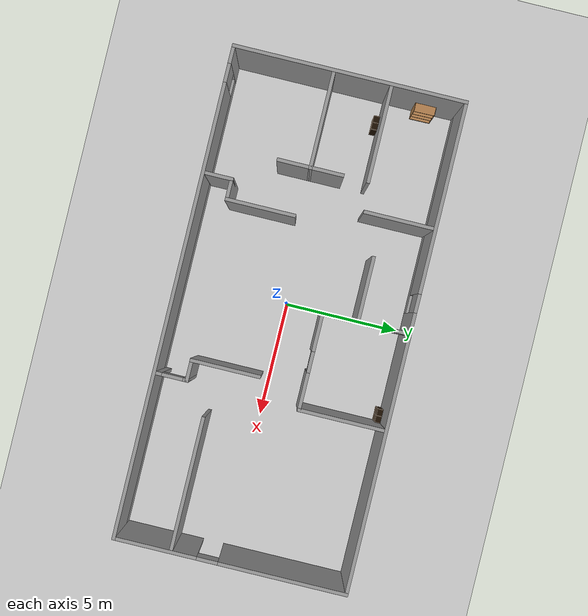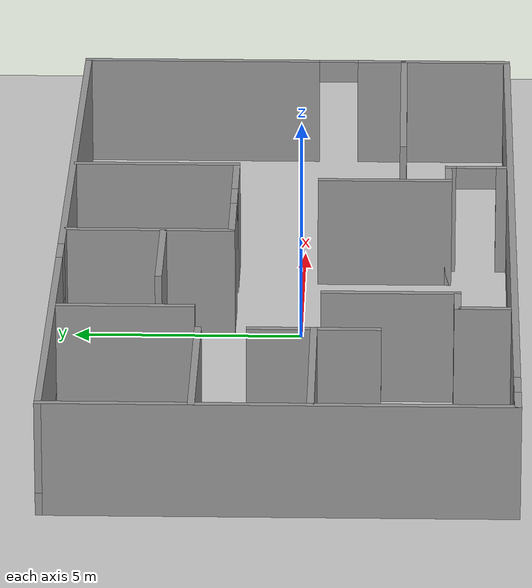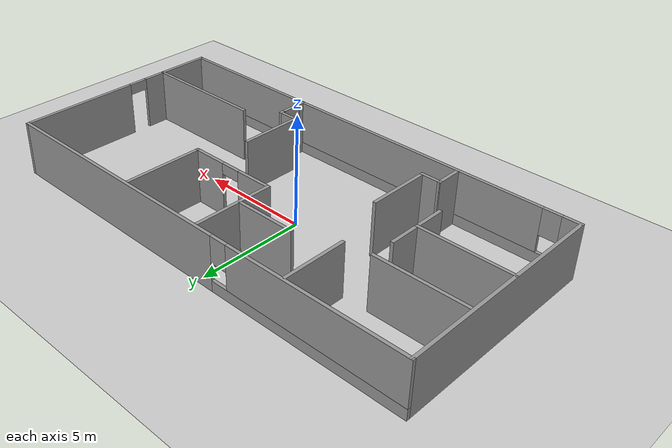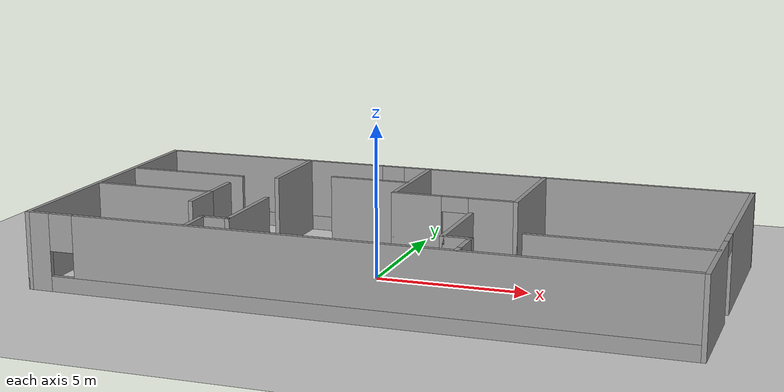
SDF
<sdf version="1.7">
 <world name="default">
  <model name="ground_plane">
   <static>1</static>
   <link name="link">
    <collision name="collision">
     <geometry><plane><normal>0 0 1</normal><size>100 100</size></plane></geometry>
     <surface>
      <contact><collide_bitmask>65535</collide_bitmask></contact>
      <friction><ode><mu>100</mu><mu2>50</mu2></ode></friction>
     </surface>
    </collision>
    <visual name="visual">
     <cast_shadows>0</cast_shadows>
     <geometry><plane><normal>0 0 1</normal><size>100 100</size></plane></geometry>
     <material>
      <script><uri>file://media/materials/scripts/gazebo.material</uri><name>Gazebo/Grey</name></script>
     </material>
    </visual>
   </link>
  </model>
  <model name="Untitled">
   <pose>0.655068 0.309447 0 0 -0 0</pose>
   <link name="Wall_1">
    <collision name="Wall_1_Collision">
     <geometry><box><size>10 0.15 2.5</size></box></geometry>
     <pose>0 0 1.25 0 -0 0</pose>
    </collision>
    <visual name="Wall_1_Visual">
     <pose>0 0 1.25 0 -0 0</pose>
     <geometry><box><size>10 0.15 2.5</size></box></geometry>
     <material>
      <script><uri>file://media/materials/scripts/gazebo.material</uri><name>Gazebo/Grey</name></script>
      <ambient>1 1 1 1</ambient>
     </material>
     <meta><layer>0</layer></meta>
    </visual>
    <pose>-10.425 0 0 0 -0 -1.5708</pose>
   </link>
   <link name="Wall_11">
    <collision name="Wall_11_Collision">
     <geometry><box><size>4.25 0.15 2.5</size></box></geometry>
     <pose>0 0 1.25 0 -0 0</pose>
    </collision>
    <visual name="Wall_11_Visual">
     <pose>0 0 1.25 0 -0 0</pose>
     <geometry><box><size>4.25 0.15 2.5</size></box></geometry>
     <material>
      <script><uri>file://media/materials/scripts/gazebo.material</uri><name>Gazebo/Grey</name></script>
      <ambient>1 1 1 1</ambient>
     </material>
     <meta><layer>0</layer></meta>
    </visual>
    <pose>-8.36177 1.77745 0 0 -0 0</pose>
   </link>
   <link name="Wall_13">
    <collision name="Wall_13_Collision">
     <geometry><box><size>4.25 0.15 2.5</size></box></geometry>
     <pose>0 0 1.25 0 -0 0</pose>
    </collision>
    <visual name="Wall_13_Visual">
     <pose>0 0 1.25 0 -0 0</pose>
     <geometry><box><size>4.25 0.15 2.5</size></box></geometry>
     <material>
      <script><uri>file://media/materials/scripts/gazebo.material</uri><name>Gazebo/Grey</name></script>
      <ambient>1 1 1 1</ambient>
     </material>
     <meta><layer>0</layer></meta>
    </visual>
    <pose>-8.34855 -0.669174 0 0 -0 0</pose>
   </link>
   <link name="Wall_14">
    <collision name="Wall_14_Collision">
     <geometry><box><size>1.5 0.15 2.5</size></box></geometry>
     <pose>0 0 1.25 0 -0 0</pose>
    </collision>
    <visual name="Wall_14_Visual">
     <pose>0 0 1.25 0 -0 0</pose>
     <geometry><box><size>1.5 0.15 2.5</size></box></geometry>
     <material>
      <script><uri>file://media/materials/scripts/gazebo.material</uri><name>Gazebo/Grey</name></script>
      <ambient>1 1 1 1</ambient>
     </material>
     <meta><layer>0</layer></meta>
    </visual>
    <pose>-6.29855 0.005825 0 0 -0 1.5708</pose>
   </link>
   <link name="Wall_16">
    <collision name="Wall_16_Collision">
     <geometry><box><size>1.5 0.15 2.5</size></box></geometry>
     <pose>0 0 1.25 0 -0 0</pose>
    </collision>
    <visual name="Wall_16_Visual">
     <pose>0 0 1.25 0 -0 0</pose>
     <geometry><box><size>1.5 0.15 2.5</size></box></geometry>
     <material>
      <script><uri>file://media/materials/scripts/gazebo.material</uri><name>Gazebo/Grey</name></script>
      <ambient>1 1 1 1</ambient>
     </material>
     <meta><layer>0</layer></meta>
    </visual>
    <pose>-6.29855 -1.34417 0 0 -0 -1.5708</pose>
   </link>
   <link name="Wall_18">
    <collision name="Wall_18_Collision">
     <geometry><box><size>1.25 0.15 2.5</size></box></geometry>
     <pose>0 0 1.25 0 -0 0</pose>
    </collision>
    <visual name="Wall_18_Visual">
     <pose>0 0 1.25 0 -0 0</pose>
     <geometry><box><size>1.25 0.15 2.5</size></box></geometry>
     <material>
      <script><uri>file://media/materials/scripts/gazebo.material</uri><name>Gazebo/Grey</name></script>
      <ambient>1 1 1 1</ambient>
     </material>
     <meta><layer>0</layer></meta>
    </visual>
    <pose>-5.06888 -4.2586 0 0 -0 1.5708</pose>
   </link>
   <link name="Wall_19">
    <collision name="Wall_19_Collision">
     <geometry><box><size>1 0.15 2.5</size></box></geometry>
     <pose>0 0 1.25 0 -0 0</pose>
    </collision>
    <visual name="Wall_19_Visual">
     <pose>0 0 1.25 0 -0 0</pose>
     <geometry><box><size>1 0.15 2.5</size></box></geometry>
     <material>
      <script><uri>file://media/materials/scripts/gazebo.material</uri><name>Gazebo/Grey</name></script>
      <ambient>1 1 1 1</ambient>
     </material>
     <meta><layer>0</layer></meta>
    </visual>
    <pose>-4.64388 -3.7086 0 0 -0 0</pose>
   </link>
   <link name="Wall_2">
    <pose>0 -4.925 0 0 -0 0</pose>
    <visual name="Wall_2_Visual_0">
     <pose>-10.0872 0 1.25 0 -0 0</pose>
     <geometry><box><size>0.825575 0.15 2.5</size></box></geometry>
     <material>
      <script><uri>file://media/materials/scripts/gazebo.material</uri><name>Gazebo/Grey</name></script>
      <ambient>1 1 1 1</ambient>
     </material>
     <meta><layer>0</layer></meta>
    </visual>
    <collision name="Wall_2_Collision_0">
     <geometry><box><size>0.825575 0.15 2.5</size></box></geometry>
     <pose>-10.0872 0 1.25 0 -0 0</pose>
    </collision>
    <visual name="Wall_2_Visual_1">
     <pose>0.412787 0 0.25 0 -0 0</pose>
     <geometry><box><size>20.1744 0.15 0.5</size></box></geometry>
     <material>
      <script><uri>file://media/materials/scripts/gazebo.material</uri><name>Gazebo/Grey</name></script>
      <ambient>1 1 1 1</ambient>
     </material>
     <meta><layer>0</layer></meta>
    </visual>
    <collision name="Wall_2_Collision_1">
     <geometry><box><size>20.1744 0.15 0.5</size></box></geometry>
     <pose>0.412787 0 0.25 0 -0 0</pose>
    </collision>
    <visual name="Wall_2_Visual_2">
     <pose>0.812787 0 1.5 0 -0 0</pose>
     <geometry><box><size>19.3744 0.15 2</size></box></geometry>
     <material>
      <script><uri>file://media/materials/scripts/gazebo.material</uri><name>Gazebo/Grey</name></script>
      <ambient>1 1 1 1</ambient>
     </material>
     <meta><layer>0</layer></meta>
    </visual>
    <collision name="Wall_2_Collision_2">
     <geometry><box><size>19.3744 0.15 2</size></box></geometry>
     <pose>0.812787 0 1.5 0 -0 0</pose>
    </collision>
    <visual name="Wall_2_Visual_3">
     <pose>-9.27443 0 1.9 0 -0 0</pose>
     <geometry><box><size>0.8 0.15 1.2</size></box></geometry>
     <material>
      <script><uri>file://media/materials/scripts/gazebo.material</uri><name>Gazebo/Grey</name></script>
      <ambient>1 1 1 1</ambient>
     </material>
     <meta><layer>0</layer></meta>
    </visual>
    <collision name="Wall_2_Collision_3">
     <geometry><box><size>0.8 0.15 1.2</size></box></geometry>
     <pose>-9.27443 0 1.9 0 -0 0</pose>
    </collision>
   </link>
   <link name="Wall_20">
    <collision name="Wall_20_Collision">
     <geometry><box><size>3 0.15 2.5</size></box></geometry>
     <pose>0 0 1.25 0 -0 0</pose>
    </collision>
    <visual name="Wall_20_Visual">
     <pose>0 0 1.25 0 -0 0</pose>
     <geometry><box><size>3 0.15 2.5</size></box></geometry>
     <material>
      <script><uri>file://media/materials/scripts/gazebo.material</uri><name>Gazebo/Grey</name></script>
      <ambient>1 1 1 1</ambient>
     </material>
     <meta><layer>0</layer></meta>
    </visual>
    <pose>-4.21887 -2.2836 0 0 -0 1.5708</pose>
   </link>
   <link name="Wall_25">
    <collision name="Wall_25_Collision">
     <geometry><box><size>2.75 0.15 2.5</size></box></geometry>
     <pose>0 0 1.25 0 -0 0</pose>
    </collision>
    <visual name="Wall_25_Visual">
     <pose>0 0 1.25 0 -0 0</pose>
     <geometry><box><size>2.75 0.15 2.5</size></box></geometry>
     <material>
      <script><uri>file://media/materials/scripts/gazebo.material</uri><name>Gazebo/Grey</name></script>
      <ambient>1 1 1 1</ambient>
     </material>
     <meta><layer>0</layer></meta>
    </visual>
    <pose>-1.99673 2.72965 0 0 -0 0</pose>
   </link>
   <link name="Wall_3">
    <pose>10.425 0 0 0 -0 1.5708</pose>
    <visual name="Wall_3_Visual_0">
     <pose>-3.21168 0 1.25 0 -0 0</pose>
     <geometry><box><size>3.57665 0.15 2.5</size></box></geometry>
     <material>
      <script><uri>file://media/materials/scripts/gazebo.material</uri><name>Gazebo/Grey</name></script>
      <ambient>1 1 1 1</ambient>
     </material>
     <meta><layer>0</layer></meta>
    </visual>
    <collision name="Wall_3_Collision_0">
     <geometry><box><size>3.57665 0.15 2.5</size></box></geometry>
     <pose>-3.21168 0 1.25 0 -0 0</pose>
    </collision>
    <visual name="Wall_3_Visual_1">
     <pose>2.23833 0 1.25 0 -0 0</pose>
     <geometry><box><size>5.52335 0.15 2.5</size></box></geometry>
     <material>
      <script><uri>file://media/materials/scripts/gazebo.material</uri><name>Gazebo/Grey</name></script>
      <ambient>1 1 1 1</ambient>
     </material>
     <meta><layer>0</layer></meta>
    </visual>
    <collision name="Wall_3_Collision_1">
     <geometry><box><size>5.52335 0.15 2.5</size></box></geometry>
     <pose>2.23833 0 1.25 0 -0 0</pose>
    </collision>
    <visual name="Wall_3_Visual_2">
     <pose>-0.97335 0 2.25 0 -0 0</pose>
     <geometry><box><size>0.9 0.15 0.5</size></box></geometry>
     <material>
      <script><uri>file://media/materials/scripts/gazebo.material</uri><name>Gazebo/Grey</name></script>
      <ambient>1 1 1 1</ambient>
     </material>
     <meta><layer>0</layer></meta>
    </visual>
    <collision name="Wall_3_Collision_2">
     <geometry><box><size>0.9 0.15 0.5</size></box></geometry>
     <pose>-0.97335 0 2.25 0 -0 0</pose>
    </collision>
   </link>
   <link name="Wall_4">
    <pose>0 4.925 0 0 -0 3.14159</pose>
    <visual name="Wall_4_Visual_0">
     <pose>-4.49595 0 1.25 0 -0 0</pose>
     <geometry><box><size>12.0081 0.15 2.5</size></box></geometry>
     <material>
      <script><uri>file://media/materials/scripts/gazebo.material</uri><name>Gazebo/Grey</name></script>
      <ambient>1 1 1 1</ambient>
     </material>
     <meta><layer>0</layer></meta>
    </visual>
    <collision name="Wall_4_Collision_0">
     <geometry><box><size>12.0081 0.15 2.5</size></box></geometry>
     <pose>-4.49595 0 1.25 0 -0 0</pose>
    </collision>
    <visual name="Wall_4_Visual_1">
     <pose>6.00405 0 0.25 0 -0 0</pose>
     <geometry><box><size>8.9919 0.15 0.5</size></box></geometry>
     <material>
      <script><uri>file://media/materials/scripts/gazebo.material</uri><name>Gazebo/Grey</name></script>
      <ambient>1 1 1 1</ambient>
     </material>
     <meta><layer>0</layer></meta>
    </visual>
    <collision name="Wall_4_Collision_1">
     <geometry><box><size>8.9919 0.15 0.5</size></box></geometry>
     <pose>6.00405 0 0.25 0 -0 0</pose>
    </collision>
    <visual name="Wall_4_Visual_2">
     <pose>6.40405 0 1.5 0 -0 0</pose>
     <geometry><box><size>8.1919 0.15 2</size></box></geometry>
     <material>
      <script><uri>file://media/materials/scripts/gazebo.material</uri><name>Gazebo/Grey</name></script>
      <ambient>1 1 1 1</ambient>
     </material>
     <meta><layer>0</layer></meta>
    </visual>
    <collision name="Wall_4_Collision_2">
     <geometry><box><size>8.1919 0.15 2</size></box></geometry>
     <pose>6.40405 0 1.5 0 -0 0</pose>
    </collision>
    <visual name="Wall_4_Visual_3">
     <pose>1.9081 0 1.9 0 -0 0</pose>
     <geometry><box><size>0.8 0.15 1.2</size></box></geometry>
     <material>
      <script><uri>file://media/materials/scripts/gazebo.material</uri><name>Gazebo/Grey</name></script>
      <ambient>1 1 1 1</ambient>
     </material>
     <meta><layer>0</layer></meta>
    </visual>
    <collision name="Wall_4_Collision_3">
     <geometry><box><size>0.8 0.15 1.2</size></box></geometry>
     <pose>1.9081 0 1.9 0 -0 0</pose>
    </collision>
   </link>
   <link name="Wall_40">
    <collision name="Wall_40_Collision">
     <geometry><box><size>3 0.15 2.5</size></box></geometry>
     <pose>0 0 1.25 0 -0 0</pose>
    </collision>
    <visual name="Wall_40_Visual">
     <pose>0 0 1.25 0 -0 0</pose>
     <geometry><box><size>3 0.15 2.5</size></box></geometry>
     <material>
      <script><uri>file://media/materials/scripts/gazebo.material</uri><name>Gazebo/Grey</name></script>
      <ambient>1 1 1 1</ambient>
     </material>
     <meta><layer>0</layer></meta>
    </visual>
    <pose>2.56024 -2.11336 0 0 -0 -1.5708</pose>
   </link>
   <link name="Wall_41">
    <collision name="Wall_41_Collision">
     <geometry><box><size>1 0.15 2.5</size></box></geometry>
     <pose>0 0 1.25 0 -0 0</pose>
    </collision>
    <visual name="Wall_41_Visual">
     <pose>0 0 1.25 0 -0 0</pose>
     <geometry><box><size>1 0.15 2.5</size></box></geometry>
     <material>
      <script><uri>file://media/materials/scripts/gazebo.material</uri><name>Gazebo/Grey</name></script>
      <ambient>1 1 1 1</ambient>
     </material>
     <meta><layer>0</layer></meta>
    </visual>
    <pose>2.98524 -3.53836 0 0 -0 0</pose>
   </link>
   <link name="Wall_42">
    <pose>3.41024 -4.21336 0 0 -0 -1.5708</pose>
    <visual name="Wall_42_Visual_0">
     <pose>-0.628703 0 1.25 0 -0 0</pose>
     <geometry><box><size>0.242595 0.15 2.5</size></box></geometry>
     <material>
      <script><uri>file://media/materials/scripts/gazebo.material</uri><name>Gazebo/Grey</name></script>
      <ambient>1 1 1 1</ambient>
     </material>
     <meta><layer>0</layer></meta>
    </visual>
    <collision name="Wall_42_Collision_0">
     <geometry><box><size>0.242595 0.15 2.5</size></box></geometry>
     <pose>-0.628703 0 1.25 0 -0 0</pose>
    </collision>
    <visual name="Wall_42_Visual_1">
     <pose>0.571297 0 1.25 0 -0 0</pose>
     <geometry><box><size>0.357405 0.15 2.5</size></box></geometry>
     <material>
      <script><uri>file://media/materials/scripts/gazebo.material</uri><name>Gazebo/Grey</name></script>
      <ambient>1 1 1 1</ambient>
     </material>
     <meta><layer>0</layer></meta>
    </visual>
    <collision name="Wall_42_Collision_1">
     <geometry><box><size>0.357405 0.15 2.5</size></box></geometry>
     <pose>0.571297 0 1.25 0 -0 0</pose>
    </collision>
    <visual name="Wall_42_Visual_2">
     <pose>-0.057405 0 2.25 0 -0 0</pose>
     <geometry><box><size>0.9 0.15 0.5</size></box></geometry>
     <material>
      <script><uri>file://media/materials/scripts/gazebo.material</uri><name>Gazebo/Grey</name></script>
      <ambient>1 1 1 1</ambient>
     </material>
     <meta><layer>0</layer></meta>
    </visual>
    <collision name="Wall_42_Collision_2">
     <geometry><box><size>0.9 0.15 0.5</size></box></geometry>
     <pose>-0.057405 0 2.25 0 -0 0</pose>
    </collision>
   </link>
   <link name="Wall_45">
    <collision name="Wall_45_Collision">
     <geometry><box><size>5.75 0.15 2.5</size></box></geometry>
     <pose>0 0 1.25 0 -0 0</pose>
    </collision>
    <visual name="Wall_45_Visual">
     <pose>0 0 1.25 0 -0 0</pose>
     <geometry><box><size>5.75 0.15 2.5</size></box></geometry>
     <material>
      <script><uri>file://media/materials/scripts/gazebo.material</uri><name>Gazebo/Grey</name></script>
      <ambient>1 1 1 1</ambient>
     </material>
     <meta><layer>0</layer></meta>
    </visual>
    <pose>7.57753 -2.51341 0 0 -0 3.14159</pose>
   </link>
   <link name="Wall_47">
    <collision name="Wall_47_Collision">
     <geometry><box><size>3.75 0.15 2.5</size></box></geometry>
     <pose>0 0 1.25 0 -0 0</pose>
    </collision>
    <visual name="Wall_47_Visual">
     <pose>0 0 1.25 0 -0 0</pose>
     <geometry><box><size>3.75 0.15 2.5</size></box></geometry>
     <material>
      <script><uri>file://media/materials/scripts/gazebo.material</uri><name>Gazebo/Grey</name></script>
      <ambient>1 1 1 1</ambient>
     </material>
     <meta><layer>0</layer></meta>
    </visual>
    <pose>-0.603184 3.03241 0 0 -0 -1.5708</pose>
   </link>
   <link name="Wall_48">
    <pose>1.44682 1.23241 0 0 -0 0</pose>
    <visual name="Wall_48_Visual_0">
     <pose>-1.2707 0 1.25 0 -0 0</pose>
     <geometry><box><size>1.7086 0.15 2.5</size></box></geometry>
     <material>
      <script><uri>file://media/materials/scripts/gazebo.material</uri><name>Gazebo/Grey</name></script>
      <ambient>1 1 1 1</ambient>
     </material>
     <meta><layer>0</layer></meta>
    </visual>
    <collision name="Wall_48_Collision_0">
     <geometry><box><size>1.7086 0.15 2.5</size></box></geometry>
     <pose>-1.2707 0 1.25 0 -0 0</pose>
    </collision>
    <visual name="Wall_48_Visual_1">
     <pose>1.3043 0 1.25 0 -0 0</pose>
     <geometry><box><size>1.6414 0.15 2.5</size></box></geometry>
     <material>
      <script><uri>file://media/materials/scripts/gazebo.material</uri><name>Gazebo/Grey</name></script>
      <ambient>1 1 1 1</ambient>
     </material>
     <meta><layer>0</layer></meta>
    </visual>
    <collision name="Wall_48_Collision_1">
     <geometry><box><size>1.6414 0.15 2.5</size></box></geometry>
     <pose>1.3043 0 1.25 0 -0 0</pose>
    </collision>
    <visual name="Wall_48_Visual_2">
     <pose>0.033599 0 2.25 0 -0 0</pose>
     <geometry><box><size>0.9 0.15 0.5</size></box></geometry>
     <material>
      <script><uri>file://media/materials/scripts/gazebo.material</uri><name>Gazebo/Grey</name></script>
      <ambient>1 1 1 1</ambient>
     </material>
     <meta><layer>0</layer></meta>
    </visual>
    <collision name="Wall_48_Collision_2">
     <geometry><box><size>0.9 0.15 0.5</size></box></geometry>
     <pose>0.033599 0 2.25 0 -0 0</pose>
    </collision>
   </link>
   <link name="Wall_49">
    <collision name="Wall_49_Collision">
     <geometry><box><size>3.75 0.15 2.5</size></box></geometry>
     <pose>0 0 1.25 0 -0 0</pose>
    </collision>
    <visual name="Wall_49_Visual">
     <pose>0 0 1.25 0 -0 0</pose>
     <geometry><box><size>3.75 0.15 2.5</size></box></geometry>
     <material>
      <script><uri>file://media/materials/scripts/gazebo.material</uri><name>Gazebo/Grey</name></script>
      <ambient>1 1 1 1</ambient>
     </material>
     <meta><layer>0</layer></meta>
    </visual>
    <pose>3.49682 3.03241 0 0 -0 1.5708</pose>
   </link>
   <link name="Wall_7">
    <collision name="Wall_7_Collision">
     <geometry><box><size>3 0.15 2.5</size></box></geometry>
     <pose>0 0 1.25 0 -0 0</pose>
    </collision>
    <visual name="Wall_7_Visual">
     <pose>0 0 1.25 0 -0 0</pose>
     <geometry><box><size>3 0.15 2.5</size></box></geometry>
     <material>
      <script><uri>file://media/materials/scripts/gazebo.material</uri><name>Gazebo/Grey</name></script>
      <ambient>1 1 1 1</ambient>
     </material>
     <meta><layer>0</layer></meta>
    </visual>
    <pose>-5.05565 3.38097 0 0 -0 -1.5708</pose>
   </link>
   <static>1</static>
  </model>
  <model name="bookshelf">
   <static>1</static>
   <link name="link">
    <inertial><mass>1</mass></inertial>
    <collision name="back">
     <pose>0 0.005 0.6 0 -0 0</pose>
     <geometry><box><size>0.9 0.01 1.2</size></box></geometry>
    </collision>
    <visual name="visual1">
     <pose>0 0.005 0.6 0 -0 0</pose>
     <geometry><box><size>0.9 0.01 1.2</size></box></geometry>
     <material>
      <script><uri>file://media/materials/scripts/gazebo.material</uri><name>Gazebo/Wood</name></script>
     </material>
    </visual>
    <collision name="left_side">
     <pose>0.45 -0.195 0.6 0 -0 0</pose>
     <geometry><box><size>0.02 0.4 1.2</size></box></geometry>
    </collision>
    <visual name="visual2">
     <pose>0.45 -0.195 0.6 0 -0 0</pose>
     <geometry><box><size>0.02 0.4 1.2</size></box></geometry>
     <material>
      <script><uri>file://media/materials/scripts/gazebo.material</uri><name>Gazebo/Wood</name></script>
     </material>
    </visual>
    <collision name="right_side">
     <pose>-0.45 -0.195 0.6 0 -0 0</pose>
     <geometry><box><size>0.02 0.4 1.2</size></box></geometry>
    </collision>
    <visual name="visual3">
     <pose>-0.45 -0.195 0.6 0 -0 0</pose>
     <geometry><box><size>0.02 0.4 1.2</size></box></geometry>
     <material>
      <script><uri>file://media/materials/scripts/gazebo.material</uri><name>Gazebo/Wood</name></script>
     </material>
    </visual>
    <collision name="bottom">
     <pose>0 -0.195 0.03 0 -0 0</pose>
     <geometry><box><size>0.88 0.4 0.06</size></box></geometry>
    </collision>
    <visual name="visual4">
     <pose>0 -0.195 0.03 0 -0 0</pose>
     <geometry><box><size>0.88 0.4 0.06</size></box></geometry>
     <material>
      <script><uri>file://media/materials/scripts/gazebo.material</uri><name>Gazebo/Wood</name></script>
     </material>
    </visual>
    <collision name="top">
     <pose>0 -0.195 1.19 0 -0 0</pose>
     <geometry><box><size>0.88 0.4 0.02</size></box></geometry>
    </collision>
    <visual name="visual5">
     <pose>0 -0.195 1.19 0 -0 0</pose>
     <geometry><box><size>0.88 0.4 0.02</size></box></geometry>
     <material>
      <script><uri>file://media/materials/scripts/gazebo.material</uri><name>Gazebo/Wood</name></script>
     </material>
    </visual>
    <collision name="low_shelf">
     <pose>0 -0.195 0.43 0 -0 0</pose>
     <geometry><box><size>0.88 0.4 0.02</size></box></geometry>
    </collision>
    <visual name="visual6">
     <pose>0 -0.195 0.43 0 -0 0</pose>
     <geometry><box><size>0.88 0.4 0.02</size></box></geometry>
     <material>
      <script><uri>file://media/materials/scripts/gazebo.material</uri><name>Gazebo/Wood</name></script>
     </material>
    </visual>
    <collision name="high_shelf">
     <pose>0 -0.195 0.8 0 -0 0</pose>
     <geometry><box><size>0.88 0.4 0.02</size></box></geometry>
    </collision>
    <visual name="visual7">
     <pose>0 -0.195 0.8 0 -0 0</pose>
     <geometry><box><size>0.88 0.4 0.02</size></box></geometry>
     <material>
      <script><uri>file://media/materials/scripts/gazebo.material</uri><name>Gazebo/Wood</name></script>
     </material>
    </visual>
   </link>
   <pose>-9.7163 3.79112 0 0 -0 1.58343</pose>
  </model>
  <model name="6_Cube_StorageE">
   <link name="Wall_0">
    <pose>0 0 0.01 0 -0 0</pose>
    <inertial>
     <mass>1.6201</mass>
     <inertia><ixx>0.0119</ixx><iyy>0.0631</iyy><izz>0.0513</izz><ixy>0</ixy><ixz>0</ixz><iyz>0</iyz></inertia>
    </inertial>
    <collision name="Wall_0_Collision"><geometry><box><size>0.616 0.296 0.02</size></box></geometry></collision>
    <visual name="Wall_0_Visual">
     <geometry><box><size>0.616 0.296 0.02</size></box></geometry>
     <material>
      <script><uri>file://media/materials/scripts/gazebo.material</uri><name>Gazebo/Grey</name></script>
      <ambient>0.105882 0.0509804 0 1</ambient>
     </material>
    </visual>
   </link>
   <joint name="0_2" type="fixed">
    <pose>-0.308 0 0 0 -0 0</pose>
    <parent>Wall_2</parent>
    <child>Wall_0</child>
    <axis><xyz>1 0 0</xyz><limit><lower>-1e+16</lower><upper>1e+16</upper></limit></axis>
   </joint>
   <joint name="0_12" type="fixed">
    <parent>Wall_12</parent>
    <child>Wall_0</child>
    <axis><xyz>0 0 1</xyz><limit><lower>-1e+16</lower><upper>1e+16</upper></limit></axis>
   </joint>
   <joint name="0_4" type="fixed">
    <pose>0.308 0 0 0 -0 0</pose>
    <parent>Wall_4</parent>
    <child>Wall_0</child>
    <axis><xyz>1 0 0</xyz><limit><lower>-1e+16</lower><upper>1e+16</upper></limit></axis>
   </joint>
   <link name="Wall_10">
    <pose>0 0 0.61 0 -0 0</pose>
    <inertial>
     <mass>1.6201</mass>
     <inertia><ixx>0.0119</ixx><iyy>0.0631</iyy><izz>0.0513</izz><ixy>0</ixy><ixz>0</ixz><iyz>0</iyz></inertia>
    </inertial>
    <collision name="Wall_10_Collision"><geometry><box><size>0.616 0.296 0.02</size></box></geometry></collision>
    <visual name="Wall_10_Visual">
     <geometry><box><size>0.616 0.296 0.02</size></box></geometry>
     <material>
      <script><uri>file://media/materials/scripts/gazebo.material</uri><name>Gazebo/Grey</name></script>
      <ambient>0.105882 0.0509804 0 1</ambient>
     </material>
    </visual>
   </link>
   <joint name="10_2" type="fixed">
    <pose>-0.308 0 0 0 -0 0</pose>
    <parent>Wall_2</parent>
    <child>Wall_10</child>
    <axis><xyz>1 0 0</xyz><limit><lower>-1e+16</lower><upper>1e+16</upper></limit></axis>
   </joint>
   <joint name="10_12" type="fixed">
    <parent>Wall_12</parent>
    <child>Wall_10</child>
    <axis><xyz>0 0 1</xyz><limit><lower>-1e+16</lower><upper>1e+16</upper></limit></axis>
   </joint>
   <joint name="10_4" type="fixed">
    <pose>0.308 0 0 0 -0 0</pose>
    <parent>Wall_4</parent>
    <child>Wall_10</child>
    <axis><xyz>1 0 0</xyz><limit><lower>-1e+16</lower><upper>1e+16</upper></limit></axis>
   </joint>
   <link name="Wall_12">
    <pose>0 0 0.4575 0 -0 0</pose>
    <inertial>
     <mass>2.4065</mass>
     <inertia><ixx>0.0177</ixx><iyy>0.1855</iyy><izz>0.168</izz><ixy>0</ixy><ixz>0</ixz><iyz>0</iyz></inertia>
    </inertial>
    <collision name="Wall_12_Collision"><geometry><box><size>0.02 0.296 0.915</size></box></geometry></collision>
    <visual name="Wall_12_Visual">
     <geometry><box><size>0.02 0.296 0.915</size></box></geometry>
     <material>
      <script><uri>file://media/materials/scripts/gazebo.material</uri><name>Gazebo/Grey</name></script>
      <ambient>0.105882 0.0509804 0 1</ambient>
     </material>
    </visual>
   </link>
   <link name="Wall_2">
    <pose>-0.298 0 0.4575 0 -0 0</pose>
    <inertial>
     <mass>2.4065</mass>
     <inertia><ixx>0.0177</ixx><iyy>0.1855</iyy><izz>0.168</izz><ixy>0</ixy><ixz>0</ixz><iyz>0</iyz></inertia>
    </inertial>
    <collision name="Wall_2_Collision"><geometry><box><size>0.02 0.296 0.915</size></box></geometry></collision>
    <visual name="Wall_2_Visual">
     <geometry><box><size>0.02 0.296 0.915</size></box></geometry>
     <material>
      <script><uri>file://media/materials/scripts/gazebo.material</uri><name>Gazebo/Grey</name></script>
      <ambient>0.105882 0.0509804 0 1</ambient>
     </material>
    </visual>
   </link>
   <link name="Wall_4">
    <pose>0.298 0 0.4575 0 -0 0</pose>
    <inertial>
     <mass>2.4065</mass>
     <inertia><ixx>0.0177</ixx><iyy>0.1855</iyy><izz>0.168</izz><ixy>0</ixy><ixz>0</ixz><iyz>0</iyz></inertia>
    </inertial>
    <collision name="Wall_4_Collision"><geometry><box><size>0.02 0.296 0.915</size></box></geometry></collision>
    <visual name="Wall_4_Visual">
     <geometry><box><size>0.02 0.296 0.915</size></box></geometry>
     <material>
      <script><uri>file://media/materials/scripts/gazebo.material</uri><name>Gazebo/Grey</name></script>
      <ambient>0.105882 0.0509804 0 1</ambient>
     </material>
    </visual>
   </link>
   <link name="Wall_6">
    <pose>0 0 0.905 0 -0 0</pose>
    <inertial>
     <mass>1.6201</mass>
     <inertia><ixx>0.0119</ixx><iyy>0.0631</iyy><izz>0.0513</izz><ixy>0</ixy><ixz>0</ixz><iyz>0</iyz></inertia>
    </inertial>
    <collision name="Wall_6_Collision"><geometry><box><size>0.616 0.296 0.02</size></box></geometry></collision>
    <visual name="Wall_6_Visual">
     <geometry><box><size>0.616 0.296 0.02</size></box></geometry>
     <material>
      <script><uri>file://media/materials/scripts/gazebo.material</uri><name>Gazebo/Grey</name></script>
      <ambient>0.105882 0.0509804 0 1</ambient>
     </material>
    </visual>
   </link>
   <joint name="6_2" type="fixed">
    <pose>-0.308 0 0 0 -0 0</pose>
    <parent>Wall_2</parent>
    <child>Wall_6</child>
    <axis><xyz>2 0 0</xyz><limit><lower>-1e+16</lower><upper>1e+16</upper></limit></axis>
   </joint>
   <joint name="6_12" type="fixed">
    <parent>Wall_12</parent>
    <child>Wall_6</child>
    <axis><xyz>0 0 1</xyz><limit><lower>-1e+16</lower><upper>1e+16</upper></limit></axis>
   </joint>
   <joint name="6_4" type="fixed">
    <pose>0.308 0 0 0 -0 0</pose>
    <parent>Wall_4</parent>
    <child>Wall_6</child>
    <axis><xyz>1 0 0</xyz><limit><lower>-1e+16</lower><upper>1e+16</upper></limit></axis>
   </joint>
   <link name="Wall_8">
    <pose>0 0 0.305 0 -0 0</pose>
    <inertial>
     <mass>1.6201</mass>
     <inertia><ixx>0.0119</ixx><iyy>0.0631</iyy><izz>0.0513</izz><ixy>0</ixy><ixz>0</ixz><iyz>0</iyz></inertia>
    </inertial>
    <collision name="Wall_8_Collision"><geometry><box><size>0.616 0.296 0.02</size></box></geometry></collision>
    <visual name="Wall_8_Visual">
     <geometry><box><size>0.616 0.296 0.02</size></box></geometry>
     <material>
      <script><uri>file://media/materials/scripts/gazebo.material</uri><name>Gazebo/Grey</name></script>
      <ambient>0.105882 0.0509804 0 1</ambient>
     </material>
    </visual>
   </link>
   <joint name="8_2" type="fixed">
    <pose>-0.308 0 0 0 -0 0</pose>
    <parent>Wall_2</parent>
    <child>Wall_8</child>
    <axis><xyz>1 0 0</xyz><limit><lower>-1e+16</lower><upper>1e+16</upper></limit></axis>
   </joint>
   <joint name="8_12" type="fixed">
    <parent>Wall_12</parent>
    <child>Wall_8</child>
    <axis><xyz>0 0 1</xyz><limit><lower>-1e+16</lower><upper>1e+16</upper></limit></axis>
   </joint>
   <joint name="8_4" type="fixed">
    <pose>0.308 0 0 0 -0 0</pose>
    <parent>Wall_4</parent>
    <child>Wall_8</child>
    <axis><xyz>1 0 0</xyz><limit><lower>-1e+16</lower><upper>1e+16</upper></limit></axis>
   </joint>
   <static>1</static>
   <pose>-8.52802 1.89454 0 0 -0 0</pose>
  </model>
  <model name="6_Cube_StorageE_0">
   <link name="Wall_0">
    <pose>0 0 0.01 0 -0 0</pose>
    <inertial>
     <mass>1.6201</mass>
     <inertia><ixx>0.0119</ixx><iyy>0.0631</iyy><izz>0.0513</izz><ixy>0</ixy><ixz>0</ixz><iyz>0</iyz></inertia>
    </inertial>
    <collision name="Wall_0_Collision"><geometry><box><size>0.616 0.296 0.02</size></box></geometry></collision>
    <visual name="Wall_0_Visual">
     <geometry><box><size>0.616 0.296 0.02</size></box></geometry>
     <material>
      <script><uri>file://media/materials/scripts/gazebo.material</uri><name>Gazebo/Grey</name></script>
      <ambient>0.105882 0.0509804 0 1</ambient>
     </material>
    </visual>
   </link>
   <joint name="0_2" type="fixed">
    <pose>-0.308 0 0 0 -0 0</pose>
    <parent>Wall_2</parent>
    <child>Wall_0</child>
    <axis><xyz>1 0 0</xyz><limit><lower>-1e+16</lower><upper>1e+16</upper></limit></axis>
   </joint>
   <joint name="0_12" type="fixed">
    <parent>Wall_12</parent>
    <child>Wall_0</child>
    <axis><xyz>0 0 1</xyz><limit><lower>-1e+16</lower><upper>1e+16</upper></limit></axis>
   </joint>
   <joint name="0_4" type="fixed">
    <pose>0.308 0 0 0 -0 0</pose>
    <parent>Wall_4</parent>
    <child>Wall_0</child>
    <axis><xyz>1 0 0</xyz><limit><lower>-1e+16</lower><upper>1e+16</upper></limit></axis>
   </joint>
   <link name="Wall_10">
    <pose>0 0 0.61 0 -0 0</pose>
    <inertial>
     <mass>1.6201</mass>
     <inertia><ixx>0.0119</ixx><iyy>0.0631</iyy><izz>0.0513</izz><ixy>0</ixy><ixz>0</ixz><iyz>0</iyz></inertia>
    </inertial>
    <collision name="Wall_10_Collision"><geometry><box><size>0.616 0.296 0.02</size></box></geometry></collision>
    <visual name="Wall_10_Visual">
     <geometry><box><size>0.616 0.296 0.02</size></box></geometry>
     <material>
      <script><uri>file://media/materials/scripts/gazebo.material</uri><name>Gazebo/Grey</name></script>
      <ambient>0.105882 0.0509804 0 1</ambient>
     </material>
    </visual>
   </link>
   <joint name="10_2" type="fixed">
    <pose>-0.308 0 0 0 -0 0</pose>
    <parent>Wall_2</parent>
    <child>Wall_10</child>
    <axis><xyz>1 0 0</xyz><limit><lower>-1e+16</lower><upper>1e+16</upper></limit></axis>
   </joint>
   <joint name="10_12" type="fixed">
    <parent>Wall_12</parent>
    <child>Wall_10</child>
    <axis><xyz>0 0 1</xyz><limit><lower>-1e+16</lower><upper>1e+16</upper></limit></axis>
   </joint>
   <joint name="10_4" type="fixed">
    <pose>0.308 0 0 0 -0 0</pose>
    <parent>Wall_4</parent>
    <child>Wall_10</child>
    <axis><xyz>1 0 0</xyz><limit><lower>-1e+16</lower><upper>1e+16</upper></limit></axis>
   </joint>
   <link name="Wall_12">
    <pose>0 0 0.4575 0 -0 0</pose>
    <inertial>
     <mass>2.4065</mass>
     <inertia><ixx>0.0177</ixx><iyy>0.1855</iyy><izz>0.168</izz><ixy>0</ixy><ixz>0</ixz><iyz>0</iyz></inertia>
    </inertial>
    <collision name="Wall_12_Collision"><geometry><box><size>0.02 0.296 0.915</size></box></geometry></collision>
    <visual name="Wall_12_Visual">
     <geometry><box><size>0.02 0.296 0.915</size></box></geometry>
     <material>
      <script><uri>file://media/materials/scripts/gazebo.material</uri><name>Gazebo/Grey</name></script>
      <ambient>0.105882 0.0509804 0 1</ambient>
     </material>
    </visual>
   </link>
   <link name="Wall_2">
    <pose>-0.298 0 0.4575 0 -0 0</pose>
    <inertial>
     <mass>2.4065</mass>
     <inertia><ixx>0.0177</ixx><iyy>0.1855</iyy><izz>0.168</izz><ixy>0</ixy><ixz>0</ixz><iyz>0</iyz></inertia>
    </inertial>
    <collision name="Wall_2_Collision"><geometry><box><size>0.02 0.296 0.915</size></box></geometry></collision>
    <visual name="Wall_2_Visual">
     <geometry><box><size>0.02 0.296 0.915</size></box></geometry>
     <material>
      <script><uri>file://media/materials/scripts/gazebo.material</uri><name>Gazebo/Grey</name></script>
      <ambient>0.105882 0.0509804 0 1</ambient>
     </material>
    </visual>
   </link>
   <link name="Wall_4">
    <pose>0.298 0 0.4575 0 -0 0</pose>
    <inertial>
     <mass>2.4065</mass>
     <inertia><ixx>0.0177</ixx><iyy>0.1855</iyy><izz>0.168</izz><ixy>0</ixy><ixz>0</ixz><iyz>0</iyz></inertia>
    </inertial>
    <collision name="Wall_4_Collision"><geometry><box><size>0.02 0.296 0.915</size></box></geometry></collision>
    <visual name="Wall_4_Visual">
     <geometry><box><size>0.02 0.296 0.915</size></box></geometry>
     <material>
      <script><uri>file://media/materials/scripts/gazebo.material</uri><name>Gazebo/Grey</name></script>
      <ambient>0.105882 0.0509804 0 1</ambient>
     </material>
    </visual>
   </link>
   <link name="Wall_6">
    <pose>0 0 0.905 0 -0 0</pose>
    <inertial>
     <mass>1.6201</mass>
     <inertia><ixx>0.0119</ixx><iyy>0.0631</iyy><izz>0.0513</izz><ixy>0</ixy><ixz>0</ixz><iyz>0</iyz></inertia>
    </inertial>
    <collision name="Wall_6_Collision"><geometry><box><size>0.616 0.296 0.02</size></box></geometry></collision>
    <visual name="Wall_6_Visual">
     <geometry><box><size>0.616 0.296 0.02</size></box></geometry>
     <material>
      <script><uri>file://media/materials/scripts/gazebo.material</uri><name>Gazebo/Grey</name></script>
      <ambient>0.105882 0.0509804 0 1</ambient>
     </material>
    </visual>
   </link>
   <joint name="6_2" type="fixed">
    <pose>-0.308 0 0 0 -0 0</pose>
    <parent>Wall_2</parent>
    <child>Wall_6</child>
    <axis><xyz>2 0 0</xyz><limit><lower>-1e+16</lower><upper>1e+16</upper></limit></axis>
   </joint>
   <joint name="6_12" type="fixed">
    <parent>Wall_12</parent>
    <child>Wall_6</child>
    <axis><xyz>0 0 1</xyz><limit><lower>-1e+16</lower><upper>1e+16</upper></limit></axis>
   </joint>
   <joint name="6_4" type="fixed">
    <pose>0.308 0 0 0 -0 0</pose>
    <parent>Wall_4</parent>
    <child>Wall_6</child>
    <axis><xyz>1 0 0</xyz><limit><lower>-1e+16</lower><upper>1e+16</upper></limit></axis>
   </joint>
   <link name="Wall_8">
    <pose>0 0 0.305 0 -0 0</pose>
    <inertial>
     <mass>1.6201</mass>
     <inertia><ixx>0.0119</ixx><iyy>0.0631</iyy><izz>0.0513</izz><ixy>0</ixy><ixz>0</ixz><iyz>0</iyz></inertia>
    </inertial>
    <collision name="Wall_8_Collision"><geometry><box><size>0.616 0.296 0.02</size></box></geometry></collision>
    <visual name="Wall_8_Visual">
     <geometry><box><size>0.616 0.296 0.02</size></box></geometry>
     <material>
      <script><uri>file://media/materials/scripts/gazebo.material</uri><name>Gazebo/Grey</name></script>
      <ambient>0.105882 0.0509804 0 1</ambient>
     </material>
    </visual>
   </link>
   <joint name="8_2" type="fixed">
    <pose>-0.308 0 0 0 -0 0</pose>
    <parent>Wall_2</parent>
    <child>Wall_8</child>
    <axis><xyz>1 0 0</xyz><limit><lower>-1e+16</lower><upper>1e+16</upper></limit></axis>
   </joint>
   <joint name="8_12" type="fixed">
    <parent>Wall_12</parent>
    <child>Wall_8</child>
    <axis><xyz>0 0 1</xyz><limit><lower>-1e+16</lower><upper>1e+16</upper></limit></axis>
   </joint>
   <joint name="8_4" type="fixed">
    <pose>0.308 0 0 0 -0 0</pose>
    <parent>Wall_4</parent>
    <child>Wall_8</child>
    <axis><xyz>1 0 0</xyz><limit><lower>-1e+16</lower><upper>1e+16</upper></limit></axis>
   </joint>
   <static>1</static>
   <pose>3.77012 5.06306 0 0 -0 0</pose>
  </model>
 </world>
</sdf>
